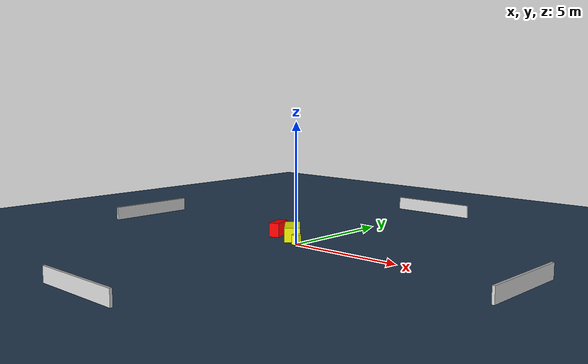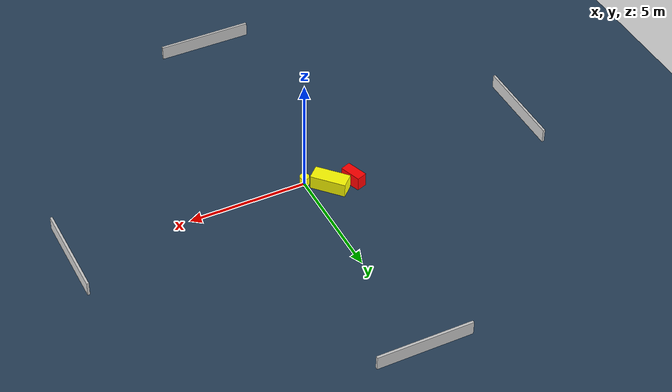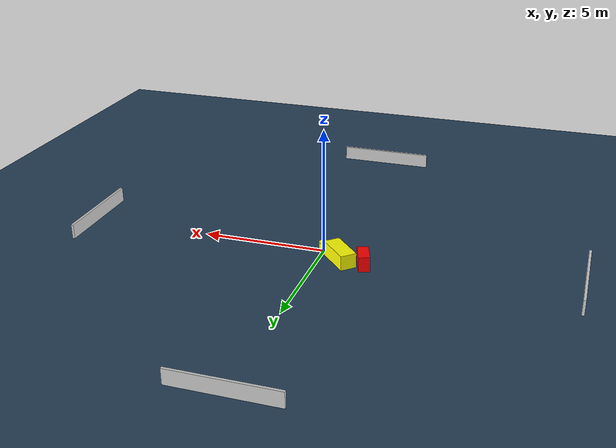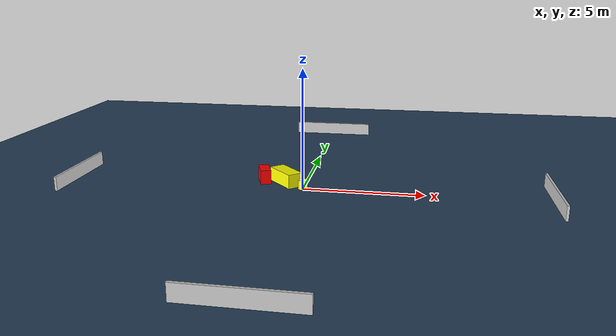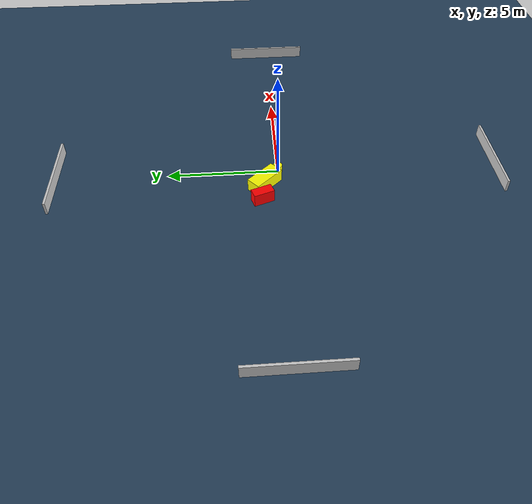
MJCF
<?xml version="1.0" ?>
<mujoco model="generated_environment">
  <option timestep="0.01" integrator="RK4" cone="elliptic"/>
  <default>
    <geom density="1"/>
  </default>
  <asset>
    <texture builtin="gradient" height="3072" name="skybox" rgb1="0.3 0.5 0.7" rgb2="0 0 0" type="skybox" width="512"/>
    <texture builtin="checker" height="300" name="groundplane" rgb1="0.2 0.3 0.4" rgb2="0.1 0.2 0.3" type="2d" width="300"/>
    <material name="groundplane" reflectance="0.2" texrepeat="5 5" texture="groundplane"/>
  </asset>
  <worldbody>
    <light dir="0 0 -1" directional="true" pos="0 0 1.5"/>
    <geom condim="3" friction="0.5 0.005 0.001" material="groundplane" name="floor" pos="0 0 0" size="0 0 0.05" type="plane"/>
    <body name="walls">
      <geom name="wall_1" condim="4" pos="-10.0 0.0 0.3" rgba="0.800000011920929 0.800000011920929 0.800000011920929 1.0" size="0.05 2.0 0.3" type="box"/>
      <geom name="wall_2" condim="4" pos="10.0 0.0 0.3" rgba="0.800000011920929 0.800000011920929 0.800000011920929 1.0" size="0.05 2.0 0.3" type="box"/>
      <geom name="wall_3" condim="4" pos="0.0 -10.0 0.3" rgba="0.800000011920929 0.800000011920929 0.800000011920929 1.0" size="2.0 0.05 0.3" type="box"/>
      <geom name="wall_4" condim="4" pos="0.0 10.0 0.3" rgba="0.800000011920929 0.800000011920929 0.800000011920929 1.0" size="2.0 0.05 0.3" type="box"/>
    </body>
    <body name="robot">
      <joint name="joint_x" type="slide" pos="0 0 0" axis="1 0 0"/>
      <joint name="joint_y" type="slide" pos="0 0 0" axis="0 1 0"/>
      <geom name="robot" type="cylinder" pos="0.0 0.0 0.2" size="0.2 0.2 0.0" mass="5.0" friction="1.0 0.005 0.0001" condim="4" rgba="1.0 1.0 0.0 1.0"/>
    </body>
    <body name="obstacle_1_movable">
      <geom name="obstacle_1_movable" condim="4" pos="-0.8427683321527322 0.633681793246969 0.3" euler="0 0 312.7788120635481" friction="0.0 0.005 0.001" rgba="1.0 1.0 0.0 1.0" size="0.7409840188512127 0.3276407310672227 0.3" type="box" mass="0.1"/>
      <joint type="free"/>
    </body>
    <body name="obstacle_2_static">
      <geom name="obstacle_2_static" condim="4" pos="-1.8145542515453774 0.7770882023838287 0.3" euler="0 0 199.47477887019048" friction="0.0 0.005 0.001" rgba="1.0 0.0 0.0 1.0" size="0.22291990171747583 0.46222131230852437 0.3" type="box"/>
    </body>
  </worldbody>
  <actuator>
    <motor name="actuator_x" joint="joint_x" gear="1" ctrlrange="-1 1"/>
    <motor name="actuator_y" joint="joint_y" gear="1" ctrlrange="-1 1"/>
  </actuator>
</mujoco>
